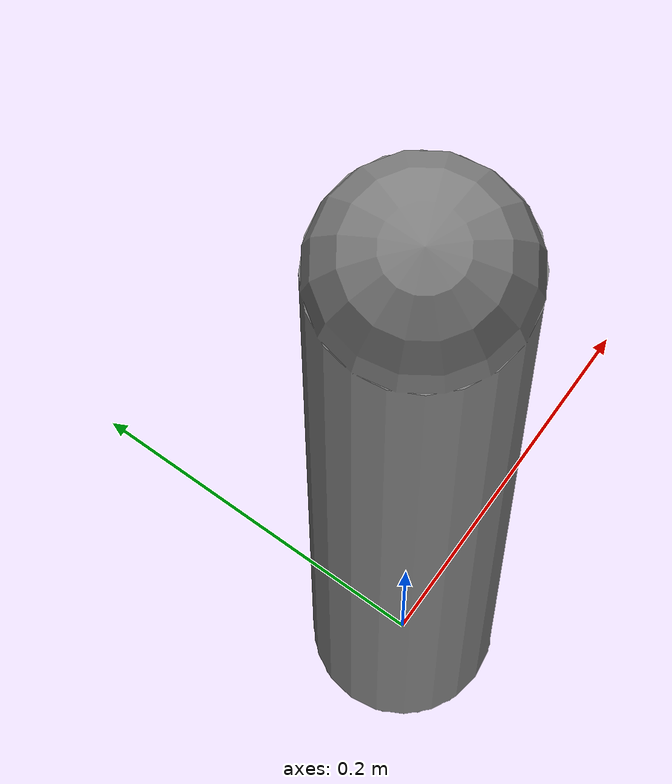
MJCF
<mujoco model="pendulum">

    <compiler inertiafromgeom="true" angle="radian" coordinate="local" />
    <option timestep="0.01" gravity="0 0 -1" iterations="20" integrator="Euler" />
  <default>
    <joint armature='0.04' damping="0.1" limited="false"/>
    <geom contype="2" conaffinity="1" condim="1" friction=".5 .1 .1" density="1000" margin="0.002" />
  </default>

    <worldbody>
        <body name="link1" pos="0 0 0">
            <site name="end_effector" pos="0 0 1" size="0.01" />
            <geom name="link1" type="capsule" fromto="0 0 0 0 0 1" size="0.05" />
            <joint name="joint1" type="hinge" pos="0 0 0" axis="0 1 0" />
        </body>
        <site name="target" pos="0 0 1" size="0.01" />
    </worldbody>

    <actuator>
        <motor joint="joint1" />
    </actuator>
</mujoco>
